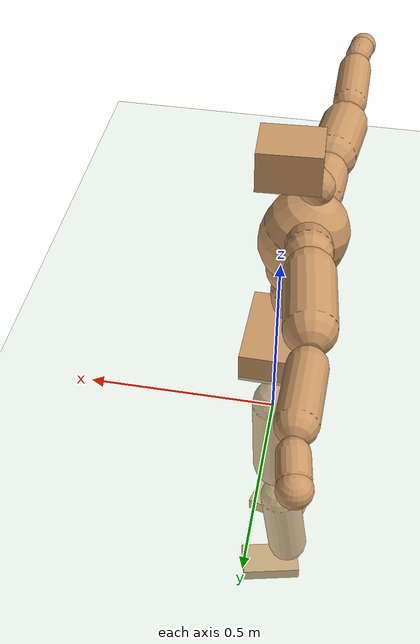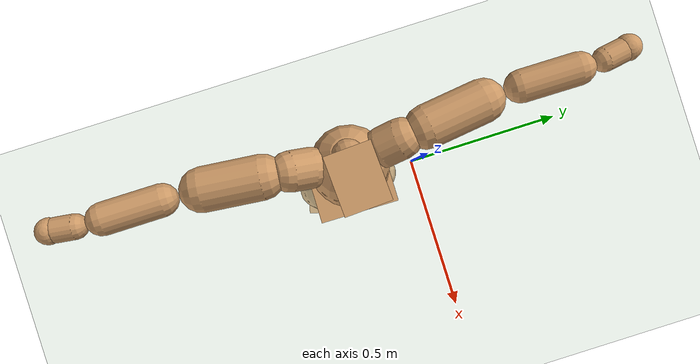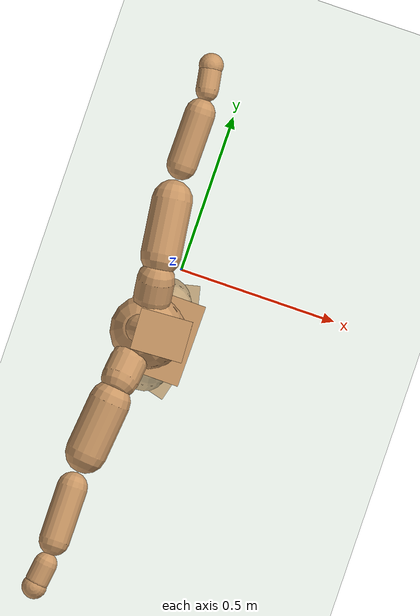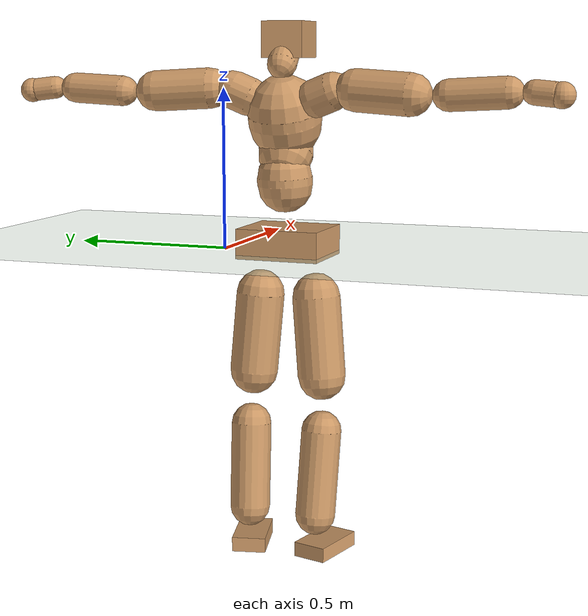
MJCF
<mujoco model="humanoid">
  <compiler coordinate="local" angle="radian"/>
  <default>
    <joint damping="0.0" armature="0.01" stiffness="0.0" limited="true"/>
    <geom conaffinity="1" condim="3" contype="7" margin="0.001" rgba="0.8 0.6 .4 1"/>
  </default>
  <asset>
    <texture type="skybox" builtin="gradient" rgb1=".4 .5 .6" rgb2="0 0 0" width="100" height="100"/>
    <texture builtin="flat" height="1278" mark="cross" markrgb="1 1 1" name="texgeom" random="0.01" rgb1="0.8 0.6 0.4" rgb2="0.8 0.6 0.4" type="cube" width="127"/>
    <texture builtin="checker" height="100" name="texplane" rgb1="0 0 0" rgb2="0.8 0.8 0.8" type="2d" width="100"/>
    <material name="MatPlane" reflectance="0.5" shininess="1" specular="1" texrepeat="60 60" texture="texplane"/>
    <material name="geom" texture="texgeom" texuniform="true"/>
  </asset>
  <worldbody>
    <light cutoff="100" diffuse="1 1 1" dir="-0 0 -1.3" directional="true" exponent="1" pos="0 0 1.3" specular=".1 .1 .1"/>
    <geom conaffinity="1" condim="3" name="floor" pos="0 0 0" rgba="0.8 0.9 0.8 1" size="100 100 .2" type="plane" material="MatPlane"/>
    <body name="Pelvis" pos="0.0017 -0.2139 0.0462">
      <freejoint name="Pelvis"/>
      <geom type="box" contype="1" conaffinity="1" density="500" pos="-0.0058 0.0001 -0.0140" size="0.1119 0.1302 0.0464" quat="1.0000 0.0000 0.0000 -0.0068" name="Pelvis"/>
      <body name="L_Hip" pos="-0.0004 0.0863 -0.1001">
        <joint name="L_Hip_x" type="hinge" pos="0 0 0" axis="1 0 0" stiffness="800" damping="80" armature="0.02" range="-180.0000 180.0000"/>
        <joint name="L_Hip_y" type="hinge" pos="0 0 0" axis="0 1 0" stiffness="800" damping="80" armature="0.02" range="-180.0000 180.0000"/>
        <joint name="L_Hip_z" type="hinge" pos="0 0 0" axis="0 0 1" stiffness="800" damping="80" armature="0.02" range="-180.0000 180.0000"/>
        <geom type="capsule" contype="1" conaffinity="1" density="500" fromto="-0.0036 0.0062 -0.0822 -0.0146 0.0247 -0.3287" size="0.0752" name="L_Hip"/>
        <body name="L_Knee" pos="-0.0182 0.0309 -0.4109">
          <joint name="L_Knee_x" type="hinge" pos="0 0 0" axis="1 0 0" stiffness="800" damping="80" armature="0.02" range="-180.0000 180.0000"/>
          <joint name="L_Knee_y" type="hinge" pos="0 0 0" axis="0 1 0" stiffness="800" damping="80" armature="0.02" range="-180.0000 180.0000"/>
          <joint name="L_Knee_z" type="hinge" pos="0 0 0" axis="0 0 1" stiffness="800" damping="80" armature="0.02" range="-180.0000 180.0000"/>
          <geom type="capsule" contype="1" conaffinity="1" density="500" fromto="-0.0110 -0.0023 -0.0882 -0.0439 -0.0093 -0.3528" size="0.0628" name="L_Knee"/>
          <body name="L_Ankle" pos="-0.0549 -0.0116 -0.441">
            <joint name="L_Ankle_x" type="hinge" pos="0 0 0" axis="1 0 0" stiffness="800" damping="80" armature="0.02" range="-180.0000 180.0000"/>
            <joint name="L_Ankle_y" type="hinge" pos="0 0 0" axis="0 1 0" stiffness="800" damping="80" armature="0.02" range="-180.0000 180.0000"/>
            <joint name="L_Ankle_z" type="hinge" pos="0 0 0" axis="0 0 1" stiffness="800" damping="80" armature="0.02" range="-180.0000 180.0000"/>
            <geom type="box" contype="1" conaffinity="1" density="500" pos="0.0636 0.0144 -0.0314" size="0.0934 0.053 0.023" quat="0.9938 0.0000 0.0000 0.1114" name="L_Ankle"/>
            <body name="L_Toe" pos="0.1272 0.0289 -0.0627">
              <joint name="L_Toe_x" type="hinge" pos="0 0 0" axis="1 0 0" stiffness="500" damping="50" armature="0.02" range="-180.0000 180.0000"/>
              <joint name="L_Toe_y" type="hinge" pos="0 0 0" axis="0 1 0" stiffness="500" damping="50" armature="0.02" range="-180.0000 180.0000"/>
              <joint name="L_Toe_z" type="hinge" pos="0 0 0" axis="0 0 1" stiffness="500" damping="50" armature="0.02" range="-180.0000 180.0000"/>
              <geom type="box" contype="1" conaffinity="1" density="500" pos="0.0000 0.0000 0.0318" size="0.001 0.0026 0.0012" quat="0.9931 0.0000 0.0000 0.1170" name="L_Toe"/>
            </body>
          </body>
        </body>
      </body>
      <body name="R_Hip" pos="0.0026 -0.0832 -0.1002">
        <joint name="R_Hip_x" type="hinge" pos="0 0 0" axis="1 0 0" stiffness="800" damping="80" armature="0.02" range="-180.0000 180.0000"/>
        <joint name="R_Hip_y" type="hinge" pos="0 0 0" axis="0 1 0" stiffness="800" damping="80" armature="0.02" range="-180.0000 180.0000"/>
        <joint name="R_Hip_z" type="hinge" pos="0 0 0" axis="0 0 1" stiffness="800" damping="80" armature="0.02" range="-180.0000 180.0000"/>
        <geom type="capsule" contype="1" conaffinity="1" density="500" fromto="-0.0041 -0.0076 -0.0828 -0.0163 -0.0306 -0.3313" size="0.0744" name="R_Hip"/>
        <body name="R_Knee" pos="-0.0204 -0.0382 -0.4141">
          <joint name="R_Knee_x" type="hinge" pos="0 0 0" axis="1 0 0" stiffness="800" damping="80" armature="0.02" range="-180.0000 180.0000"/>
          <joint name="R_Knee_y" type="hinge" pos="0 0 0" axis="0 1 0" stiffness="800" damping="80" armature="0.02" range="-180.0000 180.0000"/>
          <joint name="R_Knee_z" type="hinge" pos="0 0 0" axis="0 0 1" stiffness="800" damping="80" armature="0.02" range="-180.0000 180.0000"/>
          <geom type="capsule" contype="1" conaffinity="1" density="500" fromto="-0.0109 0.0027 -0.0884 -0.0437 0.0108 -0.3535" size="0.0626" name="R_Knee"/>
          <body name="R_Ankle" pos="-0.0546 0.0135 -0.4418">
            <joint name="R_Ankle_x" type="hinge" pos="0 0 0" axis="1 0 0" stiffness="800" damping="80" armature="0.02" range="-180.0000 180.0000"/>
            <joint name="R_Ankle_y" type="hinge" pos="0 0 0" axis="0 1 0" stiffness="800" damping="80" armature="0.02" range="-180.0000 180.0000"/>
            <joint name="R_Ankle_z" type="hinge" pos="0 0 0" axis="0 0 1" stiffness="800" damping="80" armature="0.02" range="-180.0000 180.0000"/>
            <geom type="box" contype="1" conaffinity="1" density="500" pos="0.0659 -0.0171 -0.0266" size="0.0938 0.0535 0.0227" quat="0.9920 0.0000 0.0000 -0.1264" name="R_Ankle"/>
            <body name="R_Toe" pos="0.1317 -0.0341 -0.0532">
              <joint name="R_Toe_x" type="hinge" pos="0 0 0" axis="1 0 0" stiffness="500" damping="50" armature="0.02" range="-180.0000 180.0000"/>
              <joint name="R_Toe_y" type="hinge" pos="0 0 0" axis="0 1 0" stiffness="500" damping="50" armature="0.02" range="-180.0000 180.0000"/>
              <joint name="R_Toe_z" type="hinge" pos="0 0 0" axis="0 0 1" stiffness="500" damping="50" armature="0.02" range="-180.0000 180.0000"/>
              <geom type="box" contype="1" conaffinity="1" density="500" pos="0.0000 0.0000 0.0293" size="0.001 0.0026 0.0013" quat="0.9931 0.0000 0.0000 -0.1177" name="R_Toe"/>
            </body>
          </body>
        </body>
      </body>
      <body name="Torso" pos="-0.0371 -0.0026 0.1164">
        <joint name="Torso_x" type="hinge" pos="0 0 0" axis="1 0 0" stiffness="1000" damping="100" armature="0.02" range="-180.0000 180.0000"/>
        <joint name="Torso_y" type="hinge" pos="0 0 0" axis="0 1 0" stiffness="1000" damping="100" armature="0.02" range="-180.0000 180.0000"/>
        <joint name="Torso_z" type="hinge" pos="0 0 0" axis="0 0 1" stiffness="1000" damping="100" armature="0.02" range="-180.0000 180.0000"/>
        <geom type="capsule" contype="1" conaffinity="1" density="500" fromto="-0.0049 0.0013 0.0728 -0.0033 0.0008 0.0485" size="0.0847" name="Torso"/>
        <body name="Spine" pos="-0.0082 0.0021 0.1214">
          <joint name="Spine_x" type="hinge" pos="0 0 0" axis="1 0 0" stiffness="1000" damping="100" armature="0.02" range="-180.0000 180.0000"/>
          <joint name="Spine_y" type="hinge" pos="0 0 0" axis="0 1 0" stiffness="1000" damping="100" armature="0.02" range="-180.0000 180.0000"/>
          <joint name="Spine_z" type="hinge" pos="0 0 0" axis="0 0 1" stiffness="1000" damping="100" armature="0.02" range="-180.0000 180.0000"/>
          <geom type="capsule" contype="1" conaffinity="1" density="500" fromto="0.0226 0.0011 0.0301 0.0150 0.0007 0.0201" size="0.0839" name="Spine"/>
          <body name="Chest" pos="0.0376 0.0018 0.0502">
            <joint name="Chest_x" type="hinge" pos="0 0 0" axis="1 0 0" stiffness="1000" damping="100" armature="0.02" range="-180.0000 180.0000"/>
            <joint name="Chest_y" type="hinge" pos="0 0 0" axis="0 1 0" stiffness="1000" damping="100" armature="0.02" range="-180.0000 180.0000"/>
            <joint name="Chest_z" type="hinge" pos="0 0 0" axis="0 0 1" stiffness="1000" damping="100" armature="0.02" range="-180.0000 180.0000"/>
            <geom type="capsule" contype="1" conaffinity="1" density="500" fromto="-0.0314 0.0001 0.0981 -0.0209 0.0000 0.0654" size="0.1121" name="Chest"/>
            <body name="Neck" pos="-0.0604 0.001 0.228">
              <joint name="Neck_x" type="hinge" pos="0 0 0" axis="1 0 0" stiffness="500" damping="50" armature="0.02" range="-180.0000 180.0000"/>
              <joint name="Neck_y" type="hinge" pos="0 0 0" axis="0 1 0" stiffness="500" damping="50" armature="0.02" range="-180.0000 180.0000"/>
              <joint name="Neck_z" type="hinge" pos="0 0 0" axis="0 0 1" stiffness="500" damping="50" armature="0.02" range="-180.0000 180.0000"/>
              <geom type="capsule" contype="1" conaffinity="1" density="500" fromto="0.0102 0.0001 0.0111 0.0409 0.0006 0.0443" size="0.0449" name="Neck"/>
              <body name="Head" pos="0.0511 0.0007 0.0553">
                <joint name="Head_x" type="hinge" pos="0 0 0" axis="1 0 0" stiffness="500" damping="50" armature="0.02" range="-180.0000 180.0000"/>
                <joint name="Head_y" type="hinge" pos="0 0 0" axis="0 1 0" stiffness="500" damping="50" armature="0.02" range="-180.0000 180.0000"/>
                <joint name="Head_z" type="hinge" pos="0 0 0" axis="0 0 1" stiffness="500" damping="50" armature="0.02" range="-180.0000 180.0000"/>
                <geom type="box" contype="1" conaffinity="1" density="500" pos="0.0265 0.0014 0.0287" size="0.0793 0.0632 0.0549" quat="0.9997 0.0000 0.0000 0.0255" name="Head"/>
              </body>
            </body>
            <body name="L_Thorax" pos="-0.0453 0.0841 0.132">
              <joint name="L_Thorax_x" type="hinge" pos="0 0 0" axis="1 0 0" stiffness="500" damping="50" armature="0.02" range="-180.0000 180.0000"/>
              <joint name="L_Thorax_y" type="hinge" pos="0 0 0" axis="0 1 0" stiffness="500" damping="50" armature="0.02" range="-180.0000 180.0000"/>
              <joint name="L_Thorax_z" type="hinge" pos="0 0 0" axis="0 0 1" stiffness="500" damping="50" armature="0.02" range="-180.0000 180.0000"/>
              <geom type="capsule" contype="1" conaffinity="1" density="500" fromto="-0.0022 0.0179 0.0076 -0.0087 0.0717 0.0304" size="0.0583" name="L_Thorax"/>
              <body name="L_Shoulder" pos="-0.0108 0.0896 0.038">
                <joint name="L_Shoulder_x" type="hinge" pos="0 0 0" axis="1 0 0" stiffness="500" damping="50" armature="0.02" range="-720.0000 720.0000"/>
                <joint name="L_Shoulder_y" type="hinge" pos="0 0 0" axis="0 1 0" stiffness="500" damping="50" armature="0.02" range="-720.0000 720.0000"/>
                <joint name="L_Shoulder_z" type="hinge" pos="0 0 0" axis="0 0 1" stiffness="500" damping="50" armature="0.02" range="-720.0000 720.0000"/>
                <geom type="capsule" contype="1" conaffinity="1" density="500" fromto="-0.0073 0.0561 -0.0032 -0.0290 0.2243 -0.0127" size="0.0626" name="L_Shoulder"/>
                <body name="L_Elbow" pos="-0.0363 0.2804 -0.0159">
                  <joint name="L_Elbow_x" type="hinge" pos="0 0 0" axis="1 0 0" stiffness="500" damping="50" armature="0.02" range="-720.0000 720.0000"/>
                  <joint name="L_Elbow_y" type="hinge" pos="0 0 0" axis="0 1 0" stiffness="500" damping="50" armature="0.02" range="-720.0000 720.0000"/>
                  <joint name="L_Elbow_z" type="hinge" pos="0 0 0" axis="0 0 1" stiffness="500" damping="50" armature="0.02" range="-720.0000 720.0000"/>
                  <geom type="capsule" contype="1" conaffinity="1" density="500" fromto="0.0006 0.0546 0.0027 0.0025 0.2182 0.0110" size="0.0465" name="L_Elbow"/>
                  <body name="L_Wrist" pos="0.0032 0.2728 0.0137">
                    <joint name="L_Wrist_x" type="hinge" pos="0 0 0" axis="1 0 0" stiffness="300" damping="30" armature="0.02" range="-180.0000 180.0000"/>
                    <joint name="L_Wrist_y" type="hinge" pos="0 0 0" axis="0 1 0" stiffness="300" damping="30" armature="0.02" range="-180.0000 180.0000"/>
                    <joint name="L_Wrist_z" type="hinge" pos="0 0 0" axis="0 0 1" stiffness="300" damping="30" armature="0.02" range="-180.0000 180.0000"/>
                    <geom type="capsule" contype="1" conaffinity="1" density="500" fromto="-0.0031 0.0186 -0.0022 -0.0124 0.0745 -0.0090" size="0.0352" name="L_Wrist"/>
                    <body name="L_Hand" pos="-0.0155 0.0931 -0.0112">
                      <joint name="L_Hand_x" type="hinge" pos="0 0 0" axis="1 0 0" stiffness="300" damping="30" armature="0.02" range="-180.0000 180.0000"/>
                      <joint name="L_Hand_y" type="hinge" pos="0 0 0" axis="0 1 0" stiffness="300" damping="30" armature="0.02" range="-180.0000 180.0000"/>
                      <joint name="L_Hand_z" type="hinge" pos="0 0 0" axis="0 0 1" stiffness="300" damping="30" armature="0.02" range="-180.0000 180.0000"/>
                      <geom type="sphere" contype="1" conaffinity="1" density="500" size="0.0375" pos="0.0000 0.0000 0.0000" name="L_Hand"/>
                    </body>
                  </body>
                </body>
              </body>
            </body>
            <body name="R_Thorax" pos="-0.0512 -0.0847 0.1304">
              <joint name="R_Thorax_x" type="hinge" pos="0 0 0" axis="1 0 0" stiffness="500" damping="50" armature="0.02" range="-180.0000 180.0000"/>
              <joint name="R_Thorax_y" type="hinge" pos="0 0 0" axis="0 1 0" stiffness="500" damping="50" armature="0.02" range="-180.0000 180.0000"/>
              <joint name="R_Thorax_z" type="hinge" pos="0 0 0" axis="0 0 1" stiffness="500" damping="50" armature="0.02" range="-180.0000 180.0000"/>
              <geom type="capsule" contype="1" conaffinity="1" density="500" fromto="-0.0021 -0.0191 0.0076 -0.0084 -0.0764 0.0302" size="0.0579" name="R_Thorax"/>
              <body name="R_Shoulder" pos="-0.0105 -0.0955 0.0378">
                <joint name="R_Shoulder_x" type="hinge" pos="0 0 0" axis="1 0 0" stiffness="500" damping="50" armature="0.02" range="-720.0000 720.0000"/>
                <joint name="R_Shoulder_y" type="hinge" pos="0 0 0" axis="0 1 0" stiffness="500" damping="50" armature="0.02" range="-720.0000 720.0000"/>
                <joint name="R_Shoulder_z" type="hinge" pos="0 0 0" axis="0 0 1" stiffness="500" damping="50" armature="0.02" range="-720.0000 720.0000"/>
                <geom type="capsule" contype="1" conaffinity="1" density="500" fromto="-0.0058 -0.0560 -0.0035 -0.0234 -0.2240 -0.0139" size="0.0641" name="R_Shoulder"/>
                <body name="R_Elbow" pos="-0.0292 -0.28 -0.0173">
                  <joint name="R_Elbow_x" type="hinge" pos="0 0 0" axis="1 0 0" stiffness="500" damping="50" armature="0.02" range="-720.0000 720.0000"/>
                  <joint name="R_Elbow_y" type="hinge" pos="0 0 0" axis="0 1 0" stiffness="500" damping="50" armature="0.02" range="-720.0000 720.0000"/>
                  <joint name="R_Elbow_z" type="hinge" pos="0 0 0" axis="0 0 1" stiffness="500" damping="50" armature="0.02" range="-720.0000 720.0000"/>
                  <geom type="capsule" contype="1" conaffinity="1" density="500" fromto="0.0002 -0.0563 0.0030 0.0007 -0.2254 0.0122" size="0.0468" name="R_Elbow"/>
                  <body name="R_Wrist" pos="0.0009 -0.2817 0.0152">
                    <joint name="R_Wrist_x" type="hinge" pos="0 0 0" axis="1 0 0" stiffness="300" damping="30" armature="0.02" range="-180.0000 180.0000"/>
                    <joint name="R_Wrist_y" type="hinge" pos="0 0 0" axis="0 1 0" stiffness="300" damping="30" armature="0.02" range="-180.0000 180.0000"/>
                    <joint name="R_Wrist_z" type="hinge" pos="0 0 0" axis="0 0 1" stiffness="300" damping="30" armature="0.02" range="-180.0000 180.0000"/>
                    <geom type="capsule" contype="1" conaffinity="1" density="500" fromto="-0.0026 -0.0190 -0.0017 -0.0102 -0.0759 -0.0068" size="0.0363" name="R_Wrist"/>
                    <body name="R_Hand" pos="-0.0128 -0.0948 -0.0085">
                      <joint name="R_Hand_x" type="hinge" pos="0 0 0" axis="1 0 0" stiffness="300" damping="30" armature="0.02" range="-180.0000 180.0000"/>
                      <joint name="R_Hand_y" type="hinge" pos="0 0 0" axis="0 1 0" stiffness="300" damping="30" armature="0.02" range="-180.0000 180.0000"/>
                      <joint name="R_Hand_z" type="hinge" pos="0 0 0" axis="0 0 1" stiffness="300" damping="30" armature="0.02" range="-180.0000 180.0000"/>
                      <geom type="sphere" contype="1" conaffinity="1" density="500" size="0.0381" pos="0.0000 0.0000 0.0000" name="R_Hand"/>
                    </body>
                  </body>
                </body>
              </body>
            </body>
          </body>
        </body>
      </body>
    </body>
  </worldbody>
  <actuator>
    <motor name="L_Hip_x" joint="L_Hip_x" gear="500"/>
    <motor name="L_Hip_y" joint="L_Hip_y" gear="500"/>
    <motor name="L_Hip_z" joint="L_Hip_z" gear="500"/>
    <motor name="L_Knee_x" joint="L_Knee_x" gear="500"/>
    <motor name="L_Knee_y" joint="L_Knee_y" gear="500"/>
    <motor name="L_Knee_z" joint="L_Knee_z" gear="500"/>
    <motor name="L_Ankle_x" joint="L_Ankle_x" gear="500"/>
    <motor name="L_Ankle_y" joint="L_Ankle_y" gear="500"/>
    <motor name="L_Ankle_z" joint="L_Ankle_z" gear="500"/>
    <motor name="L_Toe_x" joint="L_Toe_x" gear="500"/>
    <motor name="L_Toe_y" joint="L_Toe_y" gear="500"/>
    <motor name="L_Toe_z" joint="L_Toe_z" gear="500"/>
    <motor name="R_Hip_x" joint="R_Hip_x" gear="500"/>
    <motor name="R_Hip_y" joint="R_Hip_y" gear="500"/>
    <motor name="R_Hip_z" joint="R_Hip_z" gear="500"/>
    <motor name="R_Knee_x" joint="R_Knee_x" gear="500"/>
    <motor name="R_Knee_y" joint="R_Knee_y" gear="500"/>
    <motor name="R_Knee_z" joint="R_Knee_z" gear="500"/>
    <motor name="R_Ankle_x" joint="R_Ankle_x" gear="500"/>
    <motor name="R_Ankle_y" joint="R_Ankle_y" gear="500"/>
    <motor name="R_Ankle_z" joint="R_Ankle_z" gear="500"/>
    <motor name="R_Toe_x" joint="R_Toe_x" gear="500"/>
    <motor name="R_Toe_y" joint="R_Toe_y" gear="500"/>
    <motor name="R_Toe_z" joint="R_Toe_z" gear="500"/>
    <motor name="Torso_x" joint="Torso_x" gear="500"/>
    <motor name="Torso_y" joint="Torso_y" gear="500"/>
    <motor name="Torso_z" joint="Torso_z" gear="500"/>
    <motor name="Spine_x" joint="Spine_x" gear="500"/>
    <motor name="Spine_y" joint="Spine_y" gear="500"/>
    <motor name="Spine_z" joint="Spine_z" gear="500"/>
    <motor name="Chest_x" joint="Chest_x" gear="500"/>
    <motor name="Chest_y" joint="Chest_y" gear="500"/>
    <motor name="Chest_z" joint="Chest_z" gear="500"/>
    <motor name="Neck_x" joint="Neck_x" gear="500"/>
    <motor name="Neck_y" joint="Neck_y" gear="500"/>
    <motor name="Neck_z" joint="Neck_z" gear="500"/>
    <motor name="Head_x" joint="Head_x" gear="500"/>
    <motor name="Head_y" joint="Head_y" gear="500"/>
    <motor name="Head_z" joint="Head_z" gear="500"/>
    <motor name="L_Thorax_x" joint="L_Thorax_x" gear="500"/>
    <motor name="L_Thorax_y" joint="L_Thorax_y" gear="500"/>
    <motor name="L_Thorax_z" joint="L_Thorax_z" gear="500"/>
    <motor name="L_Shoulder_x" joint="L_Shoulder_x" gear="500"/>
    <motor name="L_Shoulder_y" joint="L_Shoulder_y" gear="500"/>
    <motor name="L_Shoulder_z" joint="L_Shoulder_z" gear="500"/>
    <motor name="L_Elbow_x" joint="L_Elbow_x" gear="500"/>
    <motor name="L_Elbow_y" joint="L_Elbow_y" gear="500"/>
    <motor name="L_Elbow_z" joint="L_Elbow_z" gear="500"/>
    <motor name="L_Wrist_x" joint="L_Wrist_x" gear="500"/>
    <motor name="L_Wrist_y" joint="L_Wrist_y" gear="500"/>
    <motor name="L_Wrist_z" joint="L_Wrist_z" gear="500"/>
    <motor name="L_Hand_x" joint="L_Hand_x" gear="500"/>
    <motor name="L_Hand_y" joint="L_Hand_y" gear="500"/>
    <motor name="L_Hand_z" joint="L_Hand_z" gear="500"/>
    <motor name="R_Thorax_x" joint="R_Thorax_x" gear="500"/>
    <motor name="R_Thorax_y" joint="R_Thorax_y" gear="500"/>
    <motor name="R_Thorax_z" joint="R_Thorax_z" gear="500"/>
    <motor name="R_Shoulder_x" joint="R_Shoulder_x" gear="500"/>
    <motor name="R_Shoulder_y" joint="R_Shoulder_y" gear="500"/>
    <motor name="R_Shoulder_z" joint="R_Shoulder_z" gear="500"/>
    <motor name="R_Elbow_x" joint="R_Elbow_x" gear="500"/>
    <motor name="R_Elbow_y" joint="R_Elbow_y" gear="500"/>
    <motor name="R_Elbow_z" joint="R_Elbow_z" gear="500"/>
    <motor name="R_Wrist_x" joint="R_Wrist_x" gear="500"/>
    <motor name="R_Wrist_y" joint="R_Wrist_y" gear="500"/>
    <motor name="R_Wrist_z" joint="R_Wrist_z" gear="500"/>
    <motor name="R_Hand_x" joint="R_Hand_x" gear="500"/>
    <motor name="R_Hand_y" joint="R_Hand_y" gear="500"/>
    <motor name="R_Hand_z" joint="R_Hand_z" gear="500"/>
  </actuator>
  <contact>
    <exclude body1="Torso" body2="Chest"/>
    <exclude body1="Head" body2="Chest"/>
    <exclude body1="R_Knee" body2="R_Toe"/>
    <exclude body1="R_Knee" body2="L_Ankle"/>
    <exclude body1="R_Knee" body2="L_Toe"/>
    <exclude body1="L_Knee" body2="L_Toe"/>
    <exclude body1="L_Knee" body2="R_Ankle"/>
    <exclude body1="L_Knee" body2="R_Toe"/>
    <exclude body1="L_Shoulder" body2="Chest"/>
    <exclude body1="R_Shoulder" body2="Chest"/>
  </contact>
  <sensor/>
  <size njmax="700" nconmax="700"/>
</mujoco>
